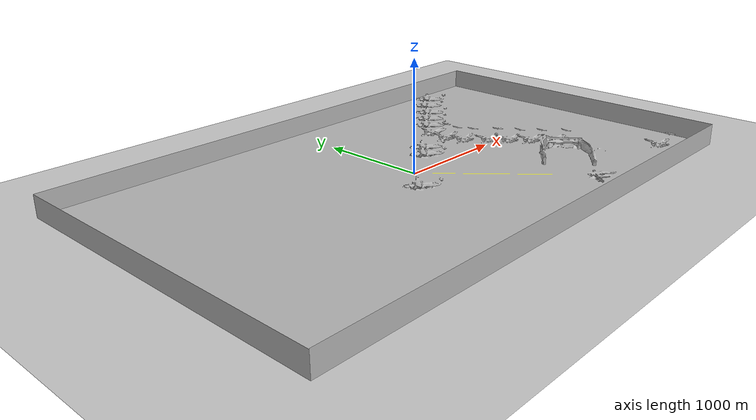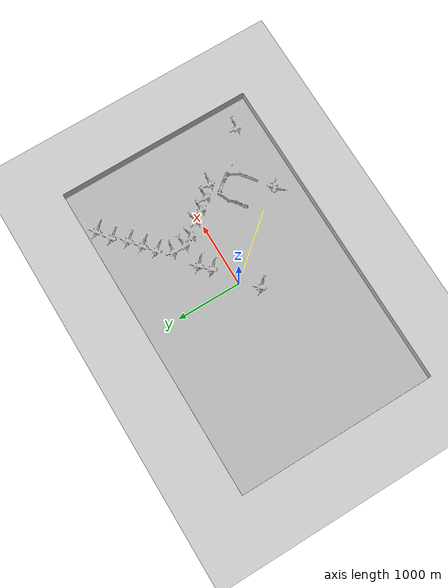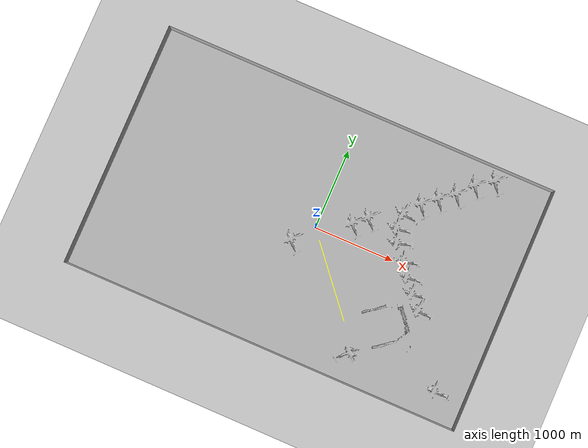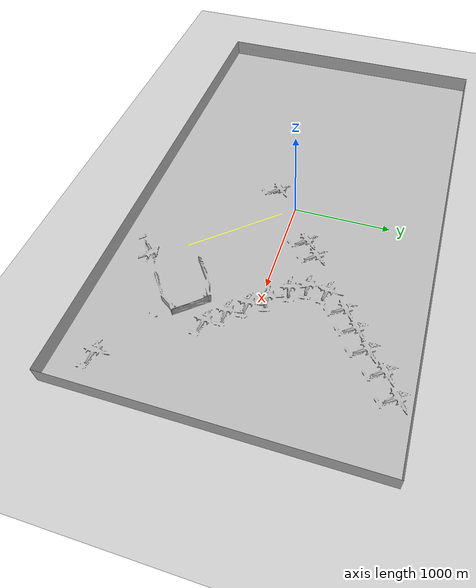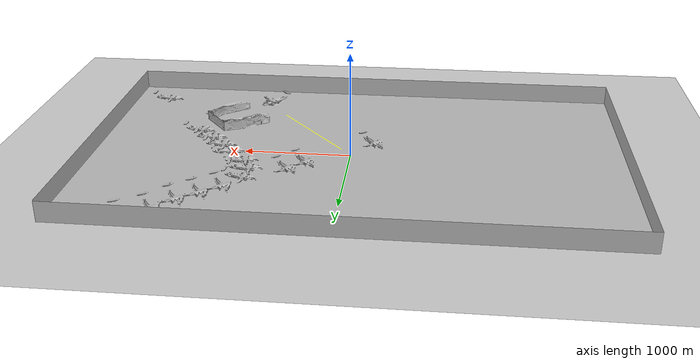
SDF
<sdf version="1.7">
 <world name="default">
  <light name="sun" type="directional">
   <pose>0 0 10 0 -0 0</pose>
   <diffuse>0.8 0.8 0.8 1</diffuse>
   <specular>0.2 0.2 0.2 1</specular>
   <attenuation>
    <range>1000</range>
    <constant>0.9</constant>
    <linear>0.01</linear>
    <quadratic>0.001</quadratic>
   </attenuation>
   <direction>-0.5 0.1 -0.9</direction>
   <spot><inner_angle>0</inner_angle><outer_angle>0</outer_angle><falloff>0</falloff></spot>
  </light>
  <model name="ground_plane">
   <static>1</static>
   <link name="link">
    <collision name="collision">
     <geometry><plane><normal>0 0 1</normal><size>100 100</size></plane></geometry>
     <surface><friction><ode><mu>100</mu><mu2>50</mu2></ode></friction></surface>
    </collision>
    <visual name="visual">
     <cast_shadows>0</cast_shadows>
     <geometry><plane><normal>0 0 1</normal><size>100 100</size></plane></geometry>
     <material>
      <script><uri>file://media/materials/scripts/gazebo.material</uri><name>Gazebo/Grey</name></script>
     </material>
    </visual>
   </link>
  </model>
  <gravity>0 0 -9.8</gravity>
  <magnetic_field>6e-06 2.3e-05 -4.2e-05</magnetic_field>
  <atmosphere type="adiabatic"/>
  <physics type="ode">
   <max_step_size>0.001</max_step_size>
   <real_time_factor>1</real_time_factor>
   <real_time_update_rate>1000</real_time_update_rate>
  </physics>
  <scene><ambient>0.8 0.8 0.8 1</ambient><background>0.9 0.9 0.9 1</background><shadows>1</shadows></scene>
  <spherical_coordinates>
   <surface_model>EARTH_WGS84</surface_model>
   <latitude_deg>0</latitude_deg>
   <longitude_deg>0</longitude_deg>
   <elevation>0</elevation>
   <heading_deg>0</heading_deg>
  </spherical_coordinates>
  <model name="airport">
   <static>1</static>
   <link name="airport">
    <collision name="airport_collision">
     <geometry><mesh><scale>5 5 5</scale><uri>model://airport/airport.dae</uri></mesh></geometry>
    </collision>
    <visual name="airport">
     <cast_shadows>0</cast_shadows>
     <geometry><mesh><scale>5 5 5</scale><uri>model://airport/airport.dae</uri></mesh></geometry>
     <material><script><name>air_port</name><uri>model://airport/airport.dae</uri></script></material>
    </visual>
   </link>
   <pose>-3.08928 -9.02705 -2.67889 0 -0 0</pose>
  </model>
 </world>
</sdf>
